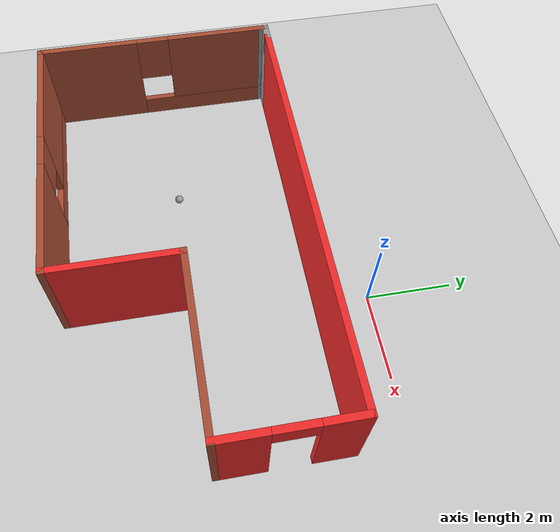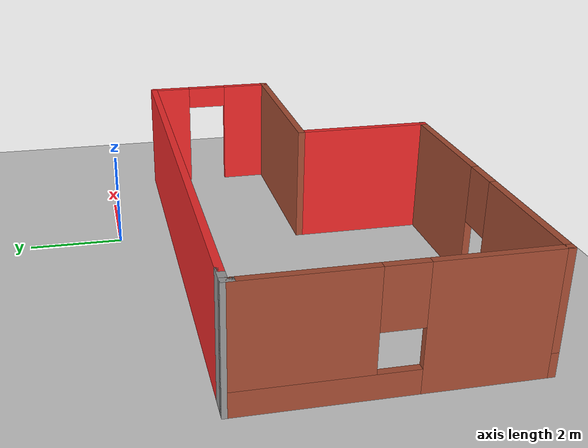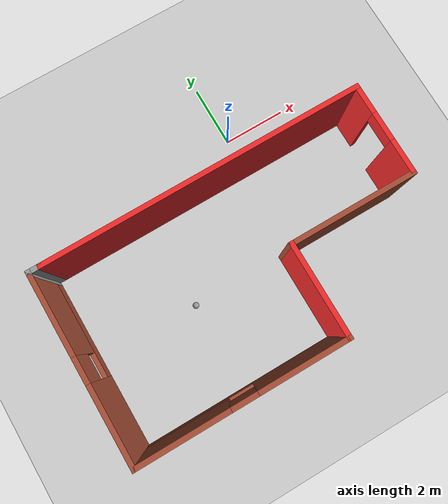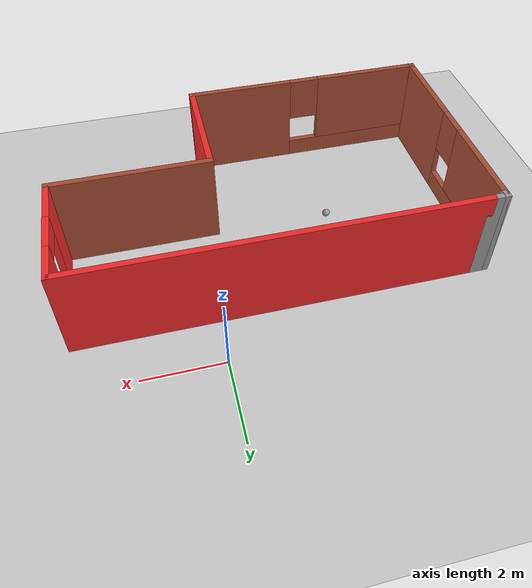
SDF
<sdf version="1.6">
 <world name="default">
  <model name="ground_plane">
   <static>1</static>
   <link name="link">
    <collision name="collision">
     <geometry><plane><normal>0 0 1</normal><size>100 100</size></plane></geometry>
     <surface>
      <contact><collide_bitmask>65535</collide_bitmask></contact>
      <friction><ode><mu>100</mu><mu2>50</mu2></ode></friction>
     </surface>
    </collision>
    <visual name="visual">
     <cast_shadows>0</cast_shadows>
     <geometry><plane><normal>0 0 1</normal><size>100 100</size></plane></geometry>
     <material>
      <script><uri>file://media/materials/scripts/gazebo.material</uri><name>Gazebo/Grey</name></script>
     </material>
    </visual>
   </link>
  </model>
  <model name="P1_building">
   <pose>-1.71 -4.07 0 0 -0 0</pose>
   <link name="Wall_0">
    <collision name="Wall_0_Collision">
     <geometry><box><size>10 0.15 2.5</size></box></geometry>
     <pose>0 0 1.25 0 -0 0</pose>
    </collision>
    <visual name="Wall_0_Visual">
     <pose>0 0 1.25 0 -0 0</pose>
     <geometry><box><size>10 0.15 2.5</size></box></geometry>
     <material>
      <script><uri>file://media/materials/scripts/gazebo.material</uri><name>Gazebo/Grey</name></script>
      <ambient>0.937255 0.160784 0.160784 1</ambient>
     </material>
     <meta><layer>0</layer></meta>
    </visual>
    <pose>0.175 2.85 0 0 -0 0</pose>
   </link>
   <link name="Wall_1">
    <pose>5.1 1.425 0 0 -0 -1.5708</pose>
    <visual name="Wall_1_Visual_0">
     <pose>-1.01941 0 1.25 0 -0 0</pose>
     <geometry><box><size>0.96117 0.15 2.5</size></box></geometry>
     <material>
      <script><uri>file://media/materials/scripts/gazebo.material</uri><name>Gazebo/Grey</name></script>
      <ambient>0.937255 0.160784 0.160784 1</ambient>
     </material>
     <meta><layer>0</layer></meta>
    </visual>
    <collision name="Wall_1_Collision_0">
     <geometry><box><size>0.96117 0.15 2.5</size></box></geometry>
     <pose>-1.01941 0 1.25 0 -0 0</pose>
    </collision>
    <visual name="Wall_1_Visual_1">
     <pose>0.930585 0 1.25 0 -0 0</pose>
     <geometry><box><size>1.13883 0.15 2.5</size></box></geometry>
     <material>
      <script><uri>file://media/materials/scripts/gazebo.material</uri><name>Gazebo/Grey</name></script>
      <ambient>0.937255 0.160784 0.160784 1</ambient>
     </material>
     <meta><layer>0</layer></meta>
    </visual>
    <collision name="Wall_1_Collision_1">
     <geometry><box><size>1.13883 0.15 2.5</size></box></geometry>
     <pose>0.930585 0 1.25 0 -0 0</pose>
    </collision>
    <visual name="Wall_1_Visual_2">
     <pose>-0.08883 0 2.25 0 -0 0</pose>
     <geometry><box><size>0.9 0.15 0.5</size></box></geometry>
     <material>
      <script><uri>file://media/materials/scripts/gazebo.material</uri><name>Gazebo/Grey</name></script>
      <ambient>0.937255 0.160784 0.160784 1</ambient>
     </material>
     <meta><layer>0</layer></meta>
    </visual>
    <collision name="Wall_1_Collision_2">
     <geometry><box><size>0.9 0.15 0.5</size></box></geometry>
     <pose>-0.08883 0 2.25 0 -0 0</pose>
    </collision>
   </link>
   <link name="Wall_2">
    <collision name="Wall_2_Collision">
     <geometry><box><size>4 0.15 2.5</size></box></geometry>
     <pose>0 0 1.25 0 -0 0</pose>
    </collision>
    <visual name="Wall_2_Visual">
     <pose>0 0 1.25 0 -0 0</pose>
     <geometry><box><size>4 0.15 2.5</size></box></geometry>
     <material>
      <script><uri>file://media/materials/scripts/gazebo.material</uri><name>Gazebo/Bricks</name></script>
      <ambient>1 1 1 1</ambient>
     </material>
     <meta><layer>0</layer></meta>
    </visual>
    <pose>3.175 -0 0 0 -0 3.14159</pose>
   </link>
   <link name="Wall_3">
    <collision name="Wall_3_Collision">
     <geometry><box><size>3 0.15 2.5</size></box></geometry>
     <pose>0 0 1.25 0 -0 0</pose>
    </collision>
    <visual name="Wall_3_Visual">
     <pose>0 0 1.25 0 -0 0</pose>
     <geometry><box><size>3 0.15 2.5</size></box></geometry>
     <material>
      <script><uri>file://media/materials/scripts/gazebo.material</uri><name>Gazebo/Grey</name></script>
      <ambient>0.937255 0.160784 0.160784 1</ambient>
     </material>
     <meta><layer>0</layer></meta>
    </visual>
    <pose>1.25 -1.425 0 0 -0 -1.5708</pose>
   </link>
   <link name="Wall_4">
    <pose>-1.925 -2.85 0 0 -0 3.14159</pose>
    <visual name="Wall_4_Visual_0">
     <pose>-1.84156 0 1.25 0 -0 0</pose>
     <geometry><box><size>2.81688 0.15 2.5</size></box></geometry>
     <material>
      <script><uri>file://media/materials/scripts/gazebo.material</uri><name>Gazebo/Bricks</name></script>
      <ambient>1 1 1 1</ambient>
     </material>
     <meta><layer>0</layer></meta>
    </visual>
    <collision name="Wall_4_Collision_0">
     <geometry><box><size>2.81688 0.15 2.5</size></box></geometry>
     <pose>-1.84156 0 1.25 0 -0 0</pose>
    </collision>
    <visual name="Wall_4_Visual_1">
     <pose>1.40844 0 0.25 0 -0 0</pose>
     <geometry><box><size>3.68312 0.15 0.5</size></box></geometry>
     <material>
      <script><uri>file://media/materials/scripts/gazebo.material</uri><name>Gazebo/Bricks</name></script>
      <ambient>1 1 1 1</ambient>
     </material>
     <meta><layer>0</layer></meta>
    </visual>
    <collision name="Wall_4_Collision_1">
     <geometry><box><size>3.68312 0.15 0.5</size></box></geometry>
     <pose>1.40844 0 0.25 0 -0 0</pose>
    </collision>
    <visual name="Wall_4_Visual_2">
     <pose>1.80844 0 1.5 0 -0 0</pose>
     <geometry><box><size>2.88312 0.15 2</size></box></geometry>
     <material>
      <script><uri>file://media/materials/scripts/gazebo.material</uri><name>Gazebo/Bricks</name></script>
      <ambient>1 1 1 1</ambient>
     </material>
     <meta><layer>0</layer></meta>
    </visual>
    <collision name="Wall_4_Collision_2">
     <geometry><box><size>2.88312 0.15 2</size></box></geometry>
     <pose>1.80844 0 1.5 0 -0 0</pose>
    </collision>
    <visual name="Wall_4_Visual_3">
     <pose>-0.033122 0 1.9 0 -0 0</pose>
     <geometry><box><size>0.8 0.15 1.2</size></box></geometry>
     <material>
      <script><uri>file://media/materials/scripts/gazebo.material</uri><name>Gazebo/Bricks</name></script>
      <ambient>1 1 1 1</ambient>
     </material>
     <meta><layer>0</layer></meta>
    </visual>
    <collision name="Wall_4_Collision_3">
     <geometry><box><size>0.8 0.15 1.2</size></box></geometry>
     <pose>-0.033122 0 1.9 0 -0 0</pose>
    </collision>
   </link>
   <link name="Wall_5">
    <pose>-5.1 -0.05 0 0 -0 1.5708</pose>
    <visual name="Wall_5_Visual_0">
     <pose>-1.64461 0 1.25 0 -0 0</pose>
     <geometry><box><size>2.46079 0.15 2.5</size></box></geometry>
     <material>
      <script><uri>file://media/materials/scripts/gazebo.material</uri><name>Gazebo/Bricks</name></script>
      <ambient>1 1 1 1</ambient>
     </material>
     <meta><layer>0</layer></meta>
    </visual>
    <collision name="Wall_5_Collision_0">
     <geometry><box><size>2.46079 0.15 2.5</size></box></geometry>
     <pose>-1.64461 0 1.25 0 -0 0</pose>
    </collision>
    <visual name="Wall_5_Visual_1">
     <pose>1.23039 0 0.25 0 -0 0</pose>
     <geometry><box><size>3.28921 0.15 0.5</size></box></geometry>
     <material>
      <script><uri>file://media/materials/scripts/gazebo.material</uri><name>Gazebo/Bricks</name></script>
      <ambient>1 1 1 1</ambient>
     </material>
     <meta><layer>0</layer></meta>
    </visual>
    <collision name="Wall_5_Collision_1">
     <geometry><box><size>3.28921 0.15 0.5</size></box></geometry>
     <pose>1.23039 0 0.25 0 -0 0</pose>
    </collision>
    <visual name="Wall_5_Visual_2">
     <pose>1.6304 0 1.5 0 -0 0</pose>
     <geometry><box><size>2.48921 0.15 2</size></box></geometry>
     <material>
      <script><uri>file://media/materials/scripts/gazebo.material</uri><name>Gazebo/Bricks</name></script>
      <ambient>1 1 1 1</ambient>
     </material>
     <meta><layer>0</layer></meta>
    </visual>
    <collision name="Wall_5_Collision_2">
     <geometry><box><size>2.48921 0.15 2</size></box></geometry>
     <pose>1.6304 0 1.5 0 -0 0</pose>
    </collision>
    <visual name="Wall_5_Visual_3">
     <pose>-0.014209 0 1.9 0 -0 0</pose>
     <geometry><box><size>0.8 0.15 1.2</size></box></geometry>
     <material>
      <script><uri>file://media/materials/scripts/gazebo.material</uri><name>Gazebo/Bricks</name></script>
      <ambient>1 1 1 1</ambient>
     </material>
     <meta><layer>0</layer></meta>
    </visual>
    <collision name="Wall_5_Collision_3">
     <geometry><box><size>0.8 0.15 1.2</size></box></geometry>
     <pose>-0.014209 0 1.9 0 -0 0</pose>
    </collision>
   </link>
   <link name="Wall_6">
    <collision name="Wall_6_Collision">
     <geometry><box><size>0.15 0.15 2.5</size></box></geometry>
     <pose>0 0 1.25 0 -0 0</pose>
    </collision>
    <visual name="Wall_6_Visual">
     <pose>0 0 1.25 0 -0 0</pose>
     <geometry><box><size>0.15 0.15 2.5</size></box></geometry>
     <material>
      <script><uri>file://media/materials/scripts/gazebo.material</uri><name>Gazebo/Grey</name></script>
      <ambient>1 1 1 1</ambient>
     </material>
     <meta><layer>0</layer></meta>
    </visual>
    <pose>-5.1 2.75 0 0 -0 0</pose>
   </link>
   <link name="Wall_7">
    <collision name="Wall_7_Collision">
     <geometry><box><size>0.25 0.15 2.5</size></box></geometry>
     <pose>0 0 1.25 0 -0 0</pose>
    </collision>
    <visual name="Wall_7_Visual">
     <pose>0 0 1.25 0 -0 0</pose>
     <geometry><box><size>0.25 0.15 2.5</size></box></geometry>
     <material>
      <script><uri>file://media/materials/scripts/gazebo.material</uri><name>Gazebo/Grey</name></script>
      <ambient>1 1 1 1</ambient>
     </material>
     <meta><layer>0</layer></meta>
    </visual>
    <pose>-5.1 2.8 0 0 -0 1.5708</pose>
   </link>
   <link name="Wall_8">
    <collision name="Wall_8_Collision">
     <geometry><box><size>0.5 0.15 2.5</size></box></geometry>
     <pose>0 0 1.25 0 -0 0</pose>
    </collision>
    <visual name="Wall_8_Visual">
     <pose>0 0 1.25 0 -0 0</pose>
     <geometry><box><size>0.5 0.15 2.5</size></box></geometry>
     <material>
      <script><uri>file://media/materials/scripts/gazebo.material</uri><name>Gazebo/Grey</name></script>
      <ambient>1 1 1 1</ambient>
     </material>
     <meta><layer>0</layer></meta>
    </visual>
    <pose>-4.925 2.85 0 0 -0 0</pose>
   </link>
   <static>1</static>
  </model>
  <model name="my_ball">
   <link name="link_0">
    <inertial>
     <mass>1</mass>
     <inertia><ixx>0.1</ixx><ixy>0</ixy><ixz>0</ixz><iyy>0.1</iyy><iyz>0</iyz><izz>0.1</izz></inertia>
    </inertial>
    <pose>-0.110335 -0.025075 0.1 0 -0 0</pose>
    <visual name="visual">
     <geometry><sphere><radius>0.1</radius></sphere></geometry>
     <material>
      <lighting>1</lighting>
      <script><uri>file://media/materials/scripts/gazebo.material</uri><name>Gazebo/Grey</name></script>
      <shader type="vertex"><normal_map>__default__</normal_map></shader>
      <ambient>1 1 1 1</ambient>
      <diffuse>1 1 1 1</diffuse>
      <specular>1 1 1 1</specular>
      <emissive>1 1 1 1</emissive>
     </material>
    </visual>
    <collision name="collision">
     <geometry><sphere><radius>0.1</radius></sphere></geometry>
     <surface>
      <friction>
       <ode><mu>1</mu><mu2>1</mu2><fdir1>0 0 0</fdir1><slip1>0</slip1><slip2>0</slip2></ode>
       <torsional>
        <coefficient>1</coefficient>
        <patch_radius>0</patch_radius>
        <surface_radius>0</surface_radius>
        <use_patch_radius>1</use_patch_radius>
        <ode><slip>0</slip></ode>
       </torsional>
      </friction>
      <bounce><restitution_coefficient>0</restitution_coefficient><threshold>1e+06</threshold></bounce>
      <contact>
       <collide_without_contact>0</collide_without_contact>
       <collide_without_contact_bitmask>1</collide_without_contact_bitmask>
       <collide_bitmask>1</collide_bitmask>
       <ode>
        <soft_cfm>0</soft_cfm>
        <soft_erp>0.2</soft_erp>
        <kp>1e+13</kp>
        <kd>1</kd>
        <max_vel>0.01</max_vel>
        <min_depth>0</min_depth>
       </ode>
       <bullet>
        <split_impulse>1</split_impulse>
        <split_impulse_penetration_threshold>-0.01</split_impulse_penetration_threshold>
        <soft_cfm>0</soft_cfm>
        <soft_erp>0.2</soft_erp>
        <kp>1e+13</kp>
        <kd>1</kd>
       </bullet>
      </contact>
     </surface>
    </collision>
   </link>
   <static>0</static>
   <pose>-3.34823 -4.03175 0.063992 -0.539612 -0.483941 0.060443</pose>
  </model>
 </world>
</sdf>
